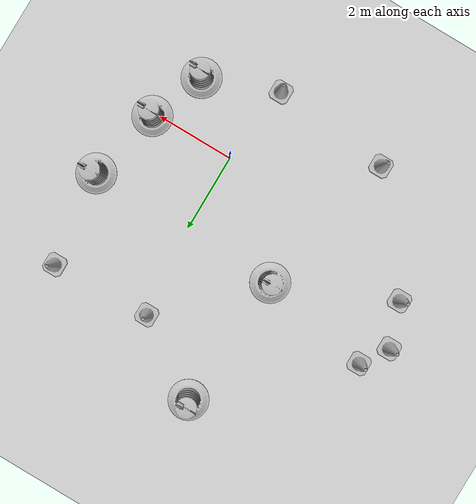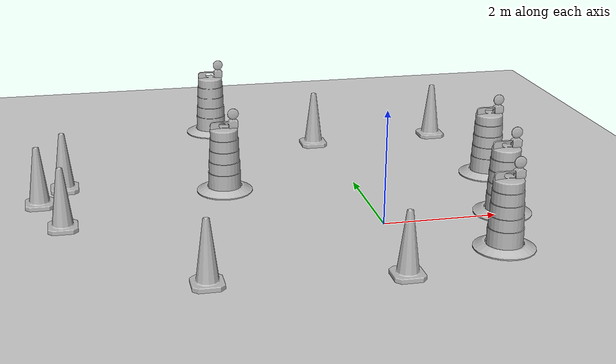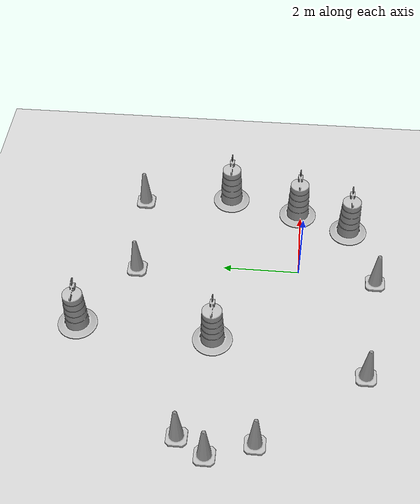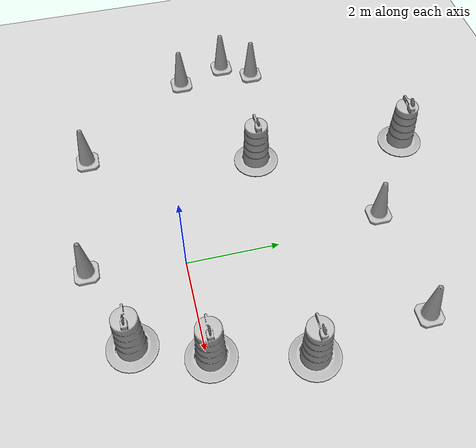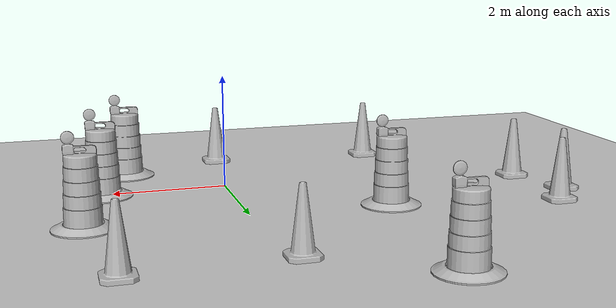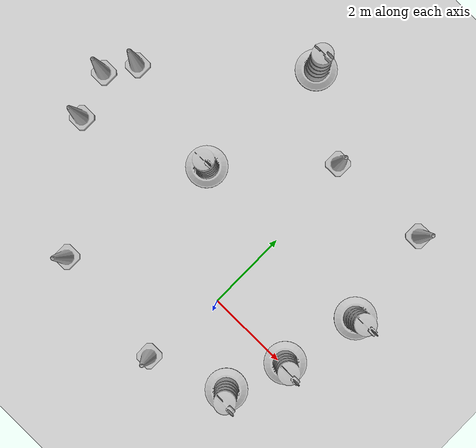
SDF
<sdf version="1.7">
 <world name="default">
  <light name="sun" type="directional">
   <pose>0 0 10 0 -0 0</pose>
   <diffuse>0.8 0.8 0.8 1</diffuse>
   <specular>0.2 0.2 0.2 1</specular>
   <attenuation>
    <range>1000</range>
    <constant>0.9</constant>
    <linear>0.01</linear>
    <quadratic>0.001</quadratic>
   </attenuation>
   <direction>-0.5 0.1 -0.9</direction>
   <spot><inner_angle>0</inner_angle><outer_angle>0</outer_angle><falloff>0</falloff></spot>
  </light>
  <model name="ground_plane">
   <static>1</static>
   <link name="link">
    <collision name="collision">
     <geometry><plane><normal>0 0 1</normal><size>100 100</size></plane></geometry>
     <surface>
      <contact><collide_bitmask>65535</collide_bitmask></contact>
      <friction><ode><mu>100</mu><mu2>50</mu2></ode></friction>
     </surface>
    </collision>
    <visual name="visual">
     <cast_shadows>0</cast_shadows>
     <geometry><plane><normal>0 0 1</normal><size>100 100</size></plane></geometry>
     <material>
      <script><uri>file://media/materials/scripts/gazebo.material</uri><name>Gazebo/Grey</name></script>
     </material>
    </visual>
   </link>
  </model>
  <gravity>0 0 -9.8</gravity>
  <magnetic_field>6e-06 2.3e-05 -4.2e-05</magnetic_field>
  <atmosphere type="adiabatic"/>
  <physics type="ode">
   <max_step_size>0.001</max_step_size>
   <real_time_factor>1</real_time_factor>
   <real_time_update_rate>1000</real_time_update_rate>
  </physics>
  <scene><ambient>0.4 0.4 0.4 1</ambient><background>0.7 0.7 0.7 1</background><shadows>1</shadows></scene>
  <spherical_coordinates>
   <surface_model>EARTH_WGS84</surface_model>
   <latitude_deg>0</latitude_deg>
   <longitude_deg>0</longitude_deg>
   <elevation>0</elevation>
   <heading_deg>0</heading_deg>
  </spherical_coordinates>
  <model name="Construction Cone">
   <link name="link">
    <collision name="collision">
     <geometry>
      <mesh><scale>10 10 10</scale><uri>model://construction_cone/meshes/construction_cone.dae</uri></mesh>
     </geometry>
    </collision>
    <visual name="visual">
     <geometry>
      <mesh><scale>10 10 10</scale><uri>model://construction_cone/meshes/construction_cone.dae</uri></mesh>
     </geometry>
    </visual>
    <inertial>
     <inertia><ixx>1</ixx><ixy>0</ixy><ixz>0</ixz><iyy>1</iyy><iyz>0</iyz><izz>1</izz></inertia>
     <mass>1</mass>
    </inertial>
   </link>
   <pose>-0.234539 -2.03382 -0 0 -0 0</pose>
  </model>
  <model name="Construction Barrel">
   <link name="link">
    <inertial>
     <pose>0 0 0.4 0 -0 0</pose>
     <mass>500</mass>
     <inertia><ixx>51.2096</ixx><iyy>51.2096</iyy><izz>25</izz><ixy>0</ixy><ixz>0</ixz><iyz>0</iyz></inertia>
    </inertial>
    <collision name="collision">
     <geometry><mesh><uri>model://construction_barrel/meshes/construction_barrel.dae</uri></mesh></geometry>
    </collision>
    <visual name="visual">
     <geometry><mesh><uri>model://construction_barrel/meshes/construction_barrel.dae</uri></mesh></geometry>
    </visual>
   </link>
   <pose>1.61339 -1.33158 -2e-06 7e-06 -2e-06 -2e-05</pose>
  </model>
  <model name="Construction Barrel_0">
   <link name="link">
    <inertial>
     <pose>0 0 0.4 0 -0 0</pose>
     <mass>500</mass>
     <inertia><ixx>51.2096</ixx><iyy>51.2096</iyy><izz>25</izz><ixy>0</ixy><ixz>0</ixz><iyz>0</iyz></inertia>
    </inertial>
    <collision name="collision">
     <geometry><mesh><uri>model://construction_barrel/meshes/construction_barrel.dae</uri></mesh></geometry>
    </collision>
    <visual name="visual">
     <geometry><mesh><uri>model://construction_barrel/meshes/construction_barrel.dae</uri></mesh></geometry>
    </visual>
   </link>
   <pose>2.16253 0.087421 -2e-06 7e-06 -4e-06 -1.9e-05</pose>
  </model>
  <model name="Construction Cone_0">
   <link name="link">
    <collision name="collision">
     <geometry>
      <mesh><scale>10 10 10</scale><uri>model://construction_cone/meshes/construction_cone.dae</uri></mesh>
     </geometry>
    </collision>
    <visual name="visual">
     <geometry>
      <mesh><scale>10 10 10</scale><uri>model://construction_cone/meshes/construction_cone.dae</uri></mesh>
     </geometry>
    </visual>
    <inertial>
     <inertia><ixx>1</ixx><ixy>0</ixy><ixz>0</ixz><iyy>1</iyy><iyz>0</iyz><izz>1</izz></inertia>
     <mass>1</mass>
    </inertial>
   </link>
   <pose>2.3235 4.42805 -0 0 -1e-06 0</pose>
  </model>
  <model name="Construction Barrel_1">
   <link name="link">
    <inertial>
     <pose>0 0 0.4 0 -0 0</pose>
     <mass>500</mass>
     <inertia><ixx>51.2096</ixx><iyy>51.2096</iyy><izz>25</izz><ixy>0</ixy><ixz>0</ixz><iyz>0</iyz></inertia>
    </inertial>
    <collision name="collision">
     <geometry><mesh><uri>model://construction_barrel/meshes/construction_barrel.dae</uri></mesh></geometry>
    </collision>
    <visual name="visual">
     <geometry><mesh><uri>model://construction_barrel/meshes/construction_barrel.dae</uri></mesh></geometry>
    </visual>
   </link>
   <pose>2.6144 1.9966 -2e-06 7e-06 -4e-06 -1.5e-05</pose>
  </model>
  <model name="Construction Cone_1">
   <link name="link">
    <collision name="collision">
     <geometry>
      <mesh><scale>10 10 10</scale><uri>model://construction_cone/meshes/construction_cone.dae</uri></mesh>
     </geometry>
    </collision>
    <visual name="visual">
     <geometry>
      <mesh><scale>10 10 10</scale><uri>model://construction_cone/meshes/construction_cone.dae</uri></mesh>
     </geometry>
    </visual>
    <inertial>
     <inertia><ixx>1</ixx><ixy>0</ixy><ixz>0</ixz><iyy>1</iyy><iyz>0</iyz><izz>1</izz></inertia>
     <mass>1</mass>
    </inertial>
   </link>
   <pose>-3.2597 -1.74182 -3e-06 -3e-06 -1e-06 -0</pose>
  </model>
  <model name="Construction Cone_2">
   <link name="link">
    <collision name="collision">
     <geometry>
      <mesh><scale>10 10 10</scale><uri>model://construction_cone/meshes/construction_cone.dae</uri></mesh>
     </geometry>
    </collision>
    <visual name="visual">
     <geometry>
      <mesh><scale>10 10 10</scale><uri>model://construction_cone/meshes/construction_cone.dae</uri></mesh>
     </geometry>
    </visual>
    <inertial>
     <inertia><ixx>1</ixx><ixy>0</ixy><ixz>0</ixz><iyy>1</iyy><iyz>0</iyz><izz>1</izz></inertia>
     <mass>1</mass>
    </inertial>
   </link>
   <pose>-5.73289 1.97538 -0 0 -1e-06 0</pose>
  </model>
  <model name="Construction Cone_3">
   <link name="link">
    <collision name="collision">
     <geometry>
      <mesh><scale>10 10 10</scale><uri>model://construction_cone/meshes/construction_cone.dae</uri></mesh>
     </geometry>
    </collision>
    <visual name="visual">
     <geometry>
      <mesh><scale>10 10 10</scale><uri>model://construction_cone/meshes/construction_cone.dae</uri></mesh>
     </geometry>
    </visual>
    <inertial>
     <inertia><ixx>1</ixx><ixy>0</ixy><ixz>0</ixz><iyy>1</iyy><iyz>0</iyz><izz>1</izz></inertia>
     <mass>1</mass>
    </inertial>
   </link>
   <pose>-5.34462 0.843331 -0 0 -0 0</pose>
  </model>
  <model name="Construction Cone_4">
   <link name="link">
    <collision name="collision">
     <geometry>
      <mesh><scale>10 10 10</scale><uri>model://construction_cone/meshes/construction_cone.dae</uri></mesh>
     </geometry>
    </collision>
    <visual name="visual">
     <geometry>
      <mesh><scale>10 10 10</scale><uri>model://construction_cone/meshes/construction_cone.dae</uri></mesh>
     </geometry>
    </visual>
    <inertial>
     <inertia><ixx>1</ixx><ixy>0</ixy><ixz>0</ixz><iyy>1</iyy><iyz>0</iyz><izz>1</izz></inertia>
     <mass>1</mass>
    </inertial>
   </link>
   <pose>-5.28725 2.66544 -0 0 -0 0</pose>
  </model>
  <model name="Construction Barrel_2">
   <link name="link">
    <inertial>
     <pose>0 0 0.4 0 -0 0</pose>
     <mass>500</mass>
     <inertia><ixx>51.2096</ixx><iyy>51.2096</iyy><izz>25</izz><ixy>0</ixy><ixz>0</ixz><iyz>0</iyz></inertia>
    </inertial>
    <collision name="collision">
     <geometry><mesh><uri>model://construction_barrel/meshes/construction_barrel.dae</uri></mesh></geometry>
    </collision>
    <visual name="visual">
     <geometry><mesh><uri>model://construction_barrel/meshes/construction_barrel.dae</uri></mesh></geometry>
    </visual>
   </link>
   <pose>-2.17678 5.57886 -0 1e-06 -1e-06 -7e-06</pose>
  </model>
  <model name="Construction Cone_5">
   <link name="link">
    <collision name="collision">
     <geometry>
      <mesh><scale>10 10 10</scale><uri>model://construction_cone/meshes/construction_cone.dae</uri></mesh>
     </geometry>
    </collision>
    <visual name="visual">
     <geometry>
      <mesh><scale>10 10 10</scale><uri>model://construction_cone/meshes/construction_cone.dae</uri></mesh>
     </geometry>
    </visual>
    <inertial>
     <inertia><ixx>1</ixx><ixy>0</ixy><ixz>0</ixz><iyy>1</iyy><iyz>0</iyz><izz>1</izz></inertia>
     <mass>1</mass>
    </inertial>
   </link>
   <pose>-0.230993 4.3226 -8e-06 1e-06 -0 0</pose>
  </model>
  <model name="Construction Barrel_3">
   <link name="link">
    <inertial>
     <pose>0 0 0.4 0 -0 0</pose>
     <mass>500</mass>
     <inertia><ixx>51.2096</ixx><iyy>51.2096</iyy><izz>25</izz><ixy>0</ixy><ixz>0</ixz><iyz>0</iyz></inertia>
    </inertial>
    <collision name="collision">
     <geometry><mesh><uri>model://construction_barrel/meshes/construction_barrel.dae</uri></mesh></geometry>
    </collision>
    <visual name="visual">
     <geometry><mesh><uri>model://construction_barrel/meshes/construction_barrel.dae</uri></mesh></geometry>
    </visual>
   </link>
   <pose>-2.41187 2.09493 -2e-06 7e-06 -4e-06 -3e-06</pose>
  </model>
 </world>
</sdf>
